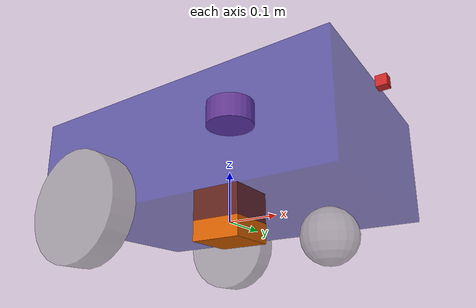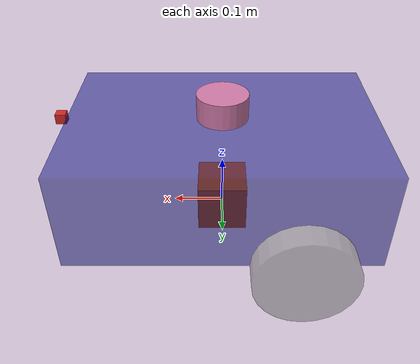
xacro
<?xml version="1.0"?>
<robot name="my_robot" xmlns:xacro="http://www.ros.org/wiki/xacro">

    <xacro:include filename="common_properties.xacro" />
    <xacro:include filename="mobile_base.xacro" />
    <xacro:include filename="gazebo_properties.xacro" />
    <xacro:include filename="gazebo_plugin.xacro" />
    <xacro:include filename="gazebo_imu_plugin.xacro" />
    <xacro:include filename="sensor.xacro" />

</robot>

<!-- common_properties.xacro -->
<robot xmlns:xacro="http://www.ros.org/wiki/xacro">

    <material name="blue">
        <color rgba="0 0 0.5 0.5" />
    </material>

    <material name="grey">
        <color rgba="0.5 0.5 0.5 0.5" />
    </material>

        <!-- Define inertial property macros  -->
    <xacro:macro name="box_inertia" params="m w h d">
        <inertial>
            <origin xyz="0 0 0" rpy="${pi/2} 0 ${pi/2}"/>
            <mass value="${m}"/>
            <inertia ixx="${(m/12) * (h*h + d*d)}" ixy="0.0" ixz="0.0" iyy="${(m/12) * (w*w + d*d)}" iyz="0.0" izz="${(m/12) * (w*w + h*h)}"/>
        </inertial>
    </xacro:macro>

    <xacro:macro name="cylinder_inertia" params="m r h">
        <inertial>
            <origin xyz="0 0 0" rpy="${pi/2} 0 0" />
            <mass value="${m}"/>
            <inertia ixx="${(m/12) * (3*r*r + h*h)}" ixy = "0" ixz = "0" iyy="${(m/12) * (3*r*r + h*h)}" iyz = "0" izz="${(m/2) * (r*r)}"/>
        </inertial>
    </xacro:macro>

    <xacro:macro name="sphere_inertia" params="m r">
        <inertial>
            <mass value="${m}"/>
            <inertia ixx="${(2/5) * m * (r*r)}" ixy="0.0" ixz="0.0" iyy="${(2/5) * m * (r*r)}" iyz="0.0" izz="${(2/5) * m * (r*r)}"/>
        </inertial>
    </xacro:macro>
</robot>

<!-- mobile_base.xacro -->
<robot xmlns:xacro="http://www.ros.org/wiki/xacro">

    <xacro:property name="base_length" value="0.6" />
    <xacro:property name="base_width" value="0.4" />
    <xacro:property name="base_height" value="0.2" />
    <xacro:property name="wheel_radius" value="0.1" />
    <xacro:property name="wheel_length" value="0.05" />

    <link name="base_footprint" />

    <link name="base_link">
        <visual>
            <geometry>
                <box size="${base_length} ${base_width} ${base_height}" />
            </geometry>
            <origin xyz="0 0 ${base_height / 2.0}" rpy="0 0 0" />
            <material name="blue" />
        </visual>
        <collision>
            <geometry>
                <box size="${base_length} ${base_width} ${base_height}"/>
            </geometry>
            <origin xyz="0 0 ${base_height / 2.0}" rpy="0 0 0" />
        </collision>

        <xacro:box_inertia m="15" w="${3*base_width}" d="${3*base_length}" h="${3*base_height}"/>
    </link>

    <xacro:macro name="wheel_link" params="prefix">
        <link name="${prefix}_wheel_link">
            <visual>
                <geometry>
                    <cylinder radius="${wheel_radius}" length="${wheel_length}" />
                </geometry>
                <origin xyz="0 0 0" rpy="${pi / 2.0} 0 0" />
                <material name="grey" />
            </visual>
            <collision>
                <origin xyz="0 0 0" rpy="${pi / 2.0} 0 0" />
                <geometry>
                    <cylinder radius="${wheel_radius}" length="${wheel_length}"/>
                </geometry>
            </collision>
            <xacro:cylinder_inertia m="0.5" r="${wheel_radius}" h="${wheel_length}"/>
        </link>
    </xacro:macro>

    <xacro:wheel_link prefix="right" />
    <xacro:wheel_link prefix="left" />

    <link name="caster_wheel_link">
        <visual>
            <geometry>
                <sphere radius="${wheel_radius / 2.0}" />
            </geometry>
            <origin xyz="0 0 0" rpy="0 0 0" />
            <material name="grey" />
        </visual>
        <collision>
            <origin xyz="0 0 0" rpy="0 0 0"/>
            <geometry>
                <sphere radius="${wheel_radius / 2.0}"/>
            </geometry>
        </collision>
        <xacro:sphere_inertia m="0.5" r="${wheel_radius / 2}"/>
    </link>

    <joint name="base_joint" type="fixed">
        <parent link="base_link" />
        <child link="base_footprint" />
        <origin xyz="0 0 -${wheel_radius}" rpy="0 0 0"/>
    </joint>

    <joint name="base_right_wheel_joint" type="continuous">
        <parent link="base_link" />
        <child link="right_wheel_link" />
        <origin xyz="${-base_length / 4.0} ${-(base_width + wheel_length) / 2.0} 0" rpy="0 0 0" />
        <axis xyz="0 1 0" />
    </joint>

    <joint name="base_left_wheel_joint" type="continuous">
        <parent link="base_link" />
        <child link="left_wheel_link" />
        <origin xyz="${-base_length / 4.0} ${(base_width + wheel_length) / 2.0} 0" rpy="0 0 0" />
        <axis xyz="0 1 0" />
    </joint>

    <joint name="base_caster_wheel_joint" type="fixed">
        <parent link="base_link" />
        <child link="caster_wheel_link" />
        <origin xyz="${base_length / 3.0} 0 ${-wheel_radius / 2.0}" rpy="0 0 0" />
    </joint>

</robot>

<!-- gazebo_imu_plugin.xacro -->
<robot name="my_robot" xmlns:xacro="http://www.ros.org/wiki/xacro">
    <link name="imu_link">
        <visual>
            <geometry>
            <box size="0.1 0.1 0.1"/>
            </geometry>
        </visual>

        <collision>
            <geometry>
            <box size="0.1 0.1 0.1"/>
            </geometry>
        </collision>

        <xacro:box_inertia m="0.1" w="0.1" d="0.1" h="0.1"/>
    </link>

    <joint name="imu_joint" type="fixed">
        <parent link="base_link"/>
        <child link="imu_link"/>
        <origin xyz="0 0 0.01"/>
    </joint>

    <gazebo reference="imu_link">
        <sensor name="my_imu" type="imu">
            <!-- ensure the sensor is active (required) -->
            <always_on>true</always_on>
            <update_rate>30</update_rate>
            <plugin name="my_imu_plugin" filename="libgazebo_ros_imu_sensor.so">
                <ros>
                    <!-- publish to /imu/data -->
                    <namespace>/demo</namespace>
                    <remapping>~/out:=imu</remapping>
                </ros>
            </plugin>
        </sensor>
    </gazebo>
</robot>

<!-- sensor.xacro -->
<robot xmlns:xacro="http://www.ros.org/wiki/xacro">
    <link name="lidar_link">
        <inertial>
            <origin xyz="0 0 0" rpy="0 0 0"/>
            <mass value="0.125"/>
            <inertia ixx="0.001"  ixy="0"  ixz="0" iyy="0.001" iyz="0" izz="0.001" />
        </inertial>

        <collision>
            <origin xyz="0 0 0" rpy="0 0 0"/>
            <geometry>
            <cylinder radius="0.05" length="0.05"/>
            </geometry>
        </collision>

        <visual>
            <origin xyz="0 0 0" rpy="0 0 0"/>
            <geometry>
            <cylinder radius="0.05" length="0.05"/>
            </geometry>
        </visual>
    </link>

    <joint name="lidar_joint" type="fixed">
        <parent link="base_link"/>
        <child link="lidar_link"/>
        <origin xyz="0 0 ${(base_height)+0.05/2}" rpy="0 0 0"/>
    </joint>

    <gazebo reference="lidar_link">
        <sensor name="lidar" type="ray">
            <always_on>true</always_on>
            <visualize>true</visualize>
            <update_rate>20</update_rate>
            <ray>
                <scan>
                    <horizontal>
                    <samples>360</samples>
                    <resolution>1.000000</resolution>
                    <min_angle>0.000000</min_angle>
                    <max_angle>6.280000</max_angle>
                    </horizontal>
                </scan>
                <range>
                    <min>0.120000</min>
                    <max>3.5</max>
                    <resolution>0.015000</resolution>
                </range>
                <noise>
                    <type>gaussian</type>
                    <mean>0.0</mean>
                    <stddev>0.01</stddev>
                </noise>
            </ray>
            <plugin name="lidar_controller" filename="libgazebo_ros_ray_sensor.so">
                <ros>
                    <remapping>~/out:=scan</remapping>
                </ros>
                <output_type>sensor_msgs/LaserScan</output_type>
                <frame_name>lidar_link</frame_name>
            </plugin>
        </sensor>
    </gazebo>

    <link name="camera_link">
        <visual>
            <origin xyz="0 0 0" rpy="0 0 0"/>
            <geometry>
            <box size="0.02 0.02 0.02"/>
            </geometry>
        </visual>

        <collision>
            <origin xyz="0 0 0" rpy="0 0 0"/>
            <geometry>
            <box size="0.02 0.02 0.02"/>
            </geometry>
        </collision>

        <inertial>
            <origin xyz="0 0 0" rpy="0 0 0"/>
            <mass value="0.035"/>
            <inertia ixx="0.001"  ixy="0"  ixz="0" iyy="0.001" iyz="0" izz="0.001" />
        </inertial>
    </link>

    <joint name="camera_joint" type="fixed">
        <parent link="base_link"/>
        <child link="camera_link"/>
        <origin xyz="${base_length / 2 +0.01} 0 ${base_height}" rpy="0 0 0"/>
    </joint>

    <link name="camera_depth_frame"/>

    <joint name="camera_depth_joint" type="fixed">
        <origin xyz="0 0 0" rpy="${-pi/2} 0 ${-pi/2}"/>
        <parent link="camera_link"/>
        <child link="camera_depth_frame"/>
    </joint>

    <gazebo reference="camera_link">
        <material>Gazebo/Red</material>

        <sensor name="depth_camera" type="depth">
            <pose>0 0 0 1.57 0 0</pose>
            <visualize>true</visualize>
            <update_rate>10.0</update_rate>
            <camera name="camera">
                <horizontal_fov>1.089</horizontal_fov>
                <image>
                    <width>640</width>
                    <height>480</height>
                    <format>R8G8B8</format>
                </image>
                <clip>
                    <near>0.05</near>
                    <far>8.0</far>
                </clip>
            </camera>
            <plugin name="depth_camera_controller" filename="libgazebo_ros_camera.so">
                <frame_name>camera_depth_frame</frame_name>
            </plugin>
        </sensor>
    </gazebo>
</robot>
